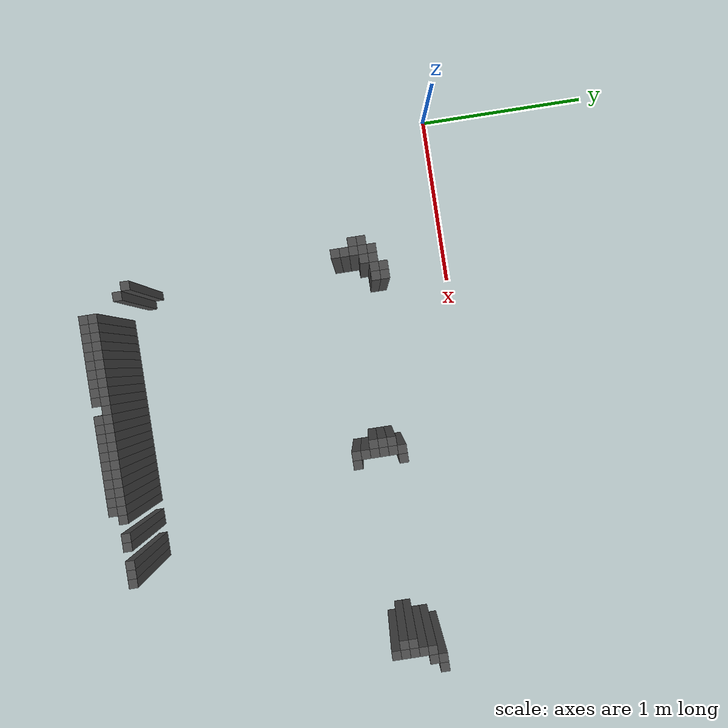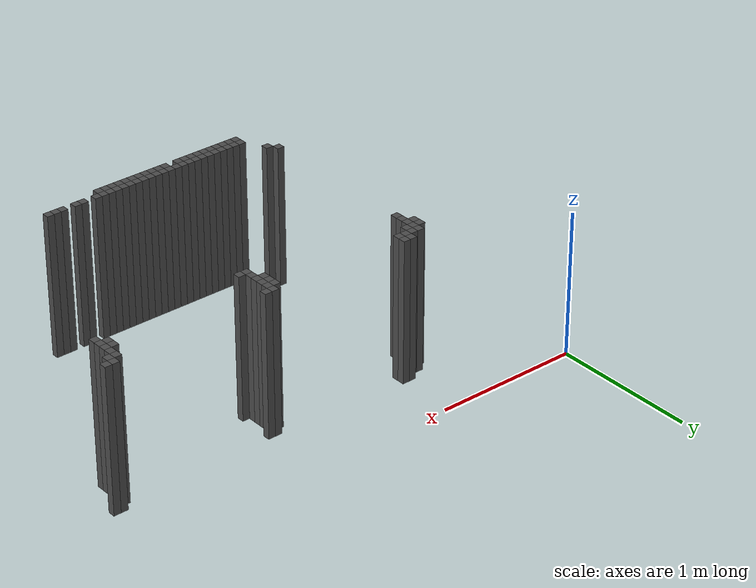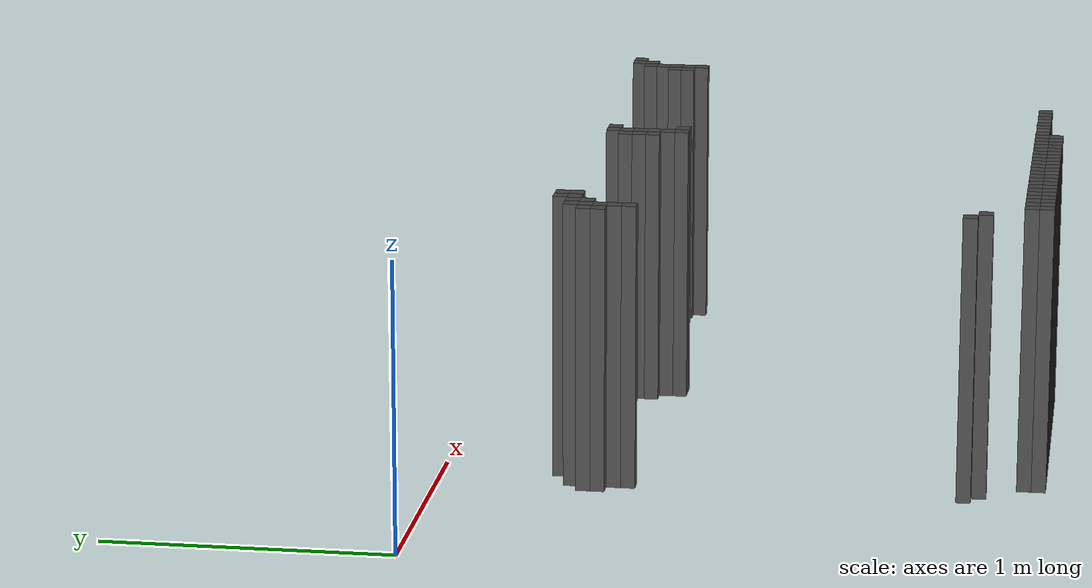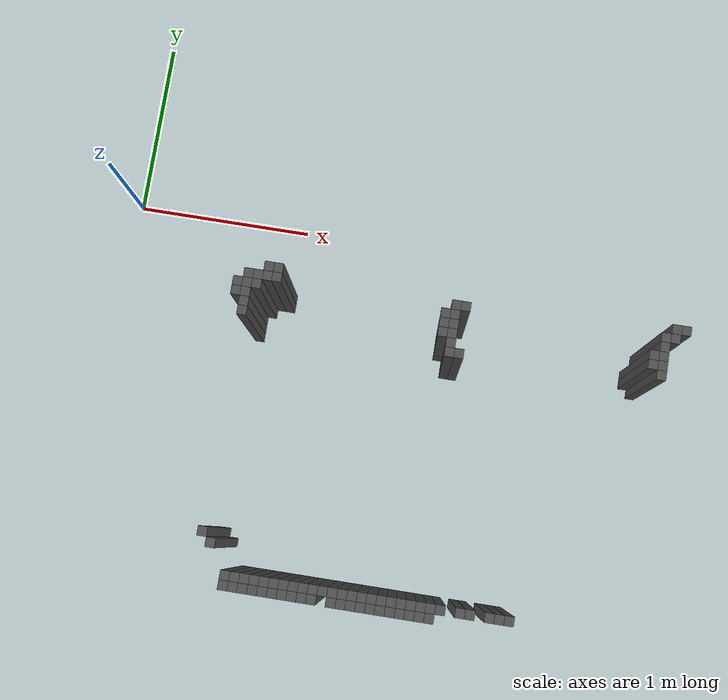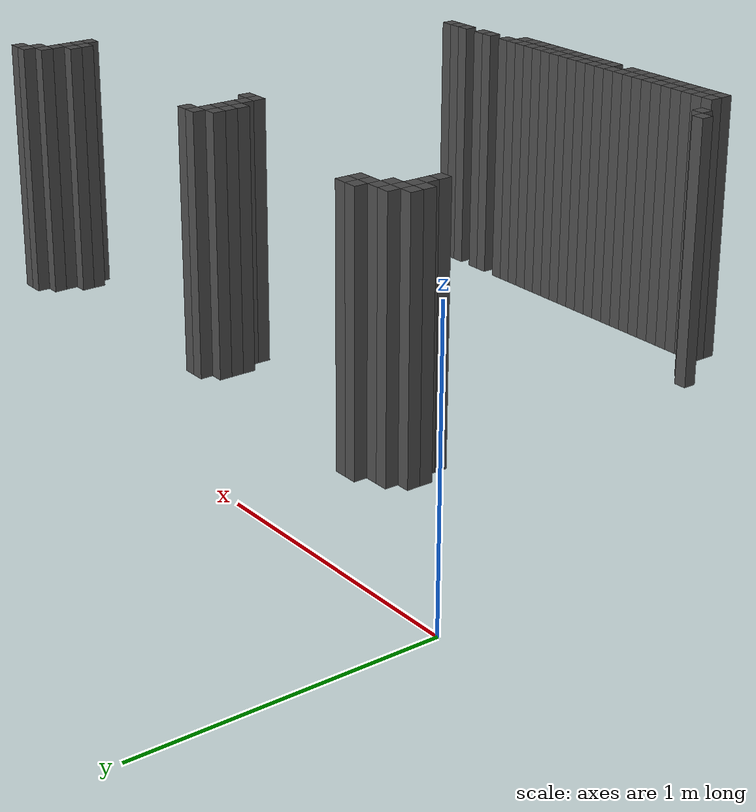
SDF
<sdf version="1.9">
 <world name="house_cleaner">
  <model name="wall_75_42">
   <static>true</static>
   <pose>0.9300 -0.4100 0.5 0 0 0</pose>
   <link name="wall_link">
    <collision name="collision"><geometry><box><size>0.05 0.05 1.0</size></box></geometry></collision>
    <visual name="visual">
     <geometry><box><size>0.05 0.05 1.0</size></box></geometry>
     <material><ambient>0.3 0.3 0.3 1</ambient><diffuse>0.3 0.3 0.3 1</diffuse></material>
    </visual>
   </link>
  </model>
  <model name="wall_75_43">
   <static>true</static>
   <pose>0.9800 -0.4100 0.5 0 0 0</pose>
   <link name="wall_link">
    <collision name="collision"><geometry><box><size>0.05 0.05 1.0</size></box></geometry></collision>
    <visual name="visual">
     <geometry><box><size>0.05 0.05 1.0</size></box></geometry>
     <material><ambient>0.3 0.3 0.3 1</ambient><diffuse>0.3 0.3 0.3 1</diffuse></material>
    </visual>
   </link>
  </model>
  <model name="wall_75_85">
   <static>true</static>
   <pose>3.0800 -0.4100 0.5 0 0 0</pose>
   <link name="wall_link">
    <collision name="collision"><geometry><box><size>0.05 0.05 1.0</size></box></geometry></collision>
    <visual name="visual">
     <geometry><box><size>0.05 0.05 1.0</size></box></geometry>
     <material><ambient>0.3 0.3 0.3 1</ambient><diffuse>0.3 0.3 0.3 1</diffuse></material>
    </visual>
   </link>
  </model>
  <model name="wall_75_86">
   <static>true</static>
   <pose>3.1300 -0.4100 0.5 0 0 0</pose>
   <link name="wall_link">
    <collision name="collision"><geometry><box><size>0.05 0.05 1.0</size></box></geometry></collision>
    <visual name="visual">
     <geometry><box><size>0.05 0.05 1.0</size></box></geometry>
     <material><ambient>0.3 0.3 0.3 1</ambient><diffuse>0.3 0.3 0.3 1</diffuse></material>
    </visual>
   </link>
  </model>
  <model name="wall_76_40">
   <static>true</static>
   <pose>0.8300 -0.4600 0.5 0 0 0</pose>
   <link name="wall_link">
    <collision name="collision"><geometry><box><size>0.05 0.05 1.0</size></box></geometry></collision>
    <visual name="visual">
     <geometry><box><size>0.05 0.05 1.0</size></box></geometry>
     <material><ambient>0.3 0.3 0.3 1</ambient><diffuse>0.3 0.3 0.3 1</diffuse></material>
    </visual>
   </link>
  </model>
  <model name="wall_76_41">
   <static>true</static>
   <pose>0.8800 -0.4600 0.5 0 0 0</pose>
   <link name="wall_link">
    <collision name="collision"><geometry><box><size>0.05 0.05 1.0</size></box></geometry></collision>
    <visual name="visual">
     <geometry><box><size>0.05 0.05 1.0</size></box></geometry>
     <material><ambient>0.3 0.3 0.3 1</ambient><diffuse>0.3 0.3 0.3 1</diffuse></material>
    </visual>
   </link>
  </model>
  <model name="wall_76_42">
   <static>true</static>
   <pose>0.9300 -0.4600 0.5 0 0 0</pose>
   <link name="wall_link">
    <collision name="collision"><geometry><box><size>0.05 0.05 1.0</size></box></geometry></collision>
    <visual name="visual">
     <geometry><box><size>0.05 0.05 1.0</size></box></geometry>
     <material><ambient>0.3 0.3 0.3 1</ambient><diffuse>0.3 0.3 0.3 1</diffuse></material>
    </visual>
   </link>
  </model>
  <model name="wall_76_43">
   <static>true</static>
   <pose>0.9800 -0.4600 0.5 0 0 0</pose>
   <link name="wall_link">
    <collision name="collision"><geometry><box><size>0.05 0.05 1.0</size></box></geometry></collision>
    <visual name="visual">
     <geometry><box><size>0.05 0.05 1.0</size></box></geometry>
     <material><ambient>0.3 0.3 0.3 1</ambient><diffuse>0.3 0.3 0.3 1</diffuse></material>
    </visual>
   </link>
  </model>
  <model name="wall_76_62">
   <static>true</static>
   <pose>1.9300 -0.4600 0.5 0 0 0</pose>
   <link name="wall_link">
    <collision name="collision"><geometry><box><size>0.05 0.05 1.0</size></box></geometry></collision>
    <visual name="visual">
     <geometry><box><size>0.05 0.05 1.0</size></box></geometry>
     <material><ambient>0.3 0.3 0.3 1</ambient><diffuse>0.3 0.3 0.3 1</diffuse></material>
    </visual>
   </link>
  </model>
  <model name="wall_76_63">
   <static>true</static>
   <pose>1.9800 -0.4600 0.5 0 0 0</pose>
   <link name="wall_link">
    <collision name="collision"><geometry><box><size>0.05 0.05 1.0</size></box></geometry></collision>
    <visual name="visual">
     <geometry><box><size>0.05 0.05 1.0</size></box></geometry>
     <material><ambient>0.3 0.3 0.3 1</ambient><diffuse>0.3 0.3 0.3 1</diffuse></material>
    </visual>
   </link>
  </model>
  <model name="wall_76_84">
   <static>true</static>
   <pose>3.0300 -0.4600 0.5 0 0 0</pose>
   <link name="wall_link">
    <collision name="collision"><geometry><box><size>0.05 0.05 1.0</size></box></geometry></collision>
    <visual name="visual">
     <geometry><box><size>0.05 0.05 1.0</size></box></geometry>
     <material><ambient>0.3 0.3 0.3 1</ambient><diffuse>0.3 0.3 0.3 1</diffuse></material>
    </visual>
   </link>
  </model>
  <model name="wall_76_85">
   <static>true</static>
   <pose>3.0800 -0.4600 0.5 0 0 0</pose>
   <link name="wall_link">
    <collision name="collision"><geometry><box><size>0.05 0.05 1.0</size></box></geometry></collision>
    <visual name="visual">
     <geometry><box><size>0.05 0.05 1.0</size></box></geometry>
     <material><ambient>0.3 0.3 0.3 1</ambient><diffuse>0.3 0.3 0.3 1</diffuse></material>
    </visual>
   </link>
  </model>
  <model name="wall_77_39">
   <static>true</static>
   <pose>0.7800 -0.5100 0.5 0 0 0</pose>
   <link name="wall_link">
    <collision name="collision"><geometry><box><size>0.05 0.05 1.0</size></box></geometry></collision>
    <visual name="visual">
     <geometry><box><size>0.05 0.05 1.0</size></box></geometry>
     <material><ambient>0.3 0.3 0.3 1</ambient><diffuse>0.3 0.3 0.3 1</diffuse></material>
    </visual>
   </link>
  </model>
  <model name="wall_77_40">
   <static>true</static>
   <pose>0.8300 -0.5100 0.5 0 0 0</pose>
   <link name="wall_link">
    <collision name="collision"><geometry><box><size>0.05 0.05 1.0</size></box></geometry></collision>
    <visual name="visual">
     <geometry><box><size>0.05 0.05 1.0</size></box></geometry>
     <material><ambient>0.3 0.3 0.3 1</ambient><diffuse>0.3 0.3 0.3 1</diffuse></material>
    </visual>
   </link>
  </model>
  <model name="wall_77_41">
   <static>true</static>
   <pose>0.8800 -0.5100 0.5 0 0 0</pose>
   <link name="wall_link">
    <collision name="collision"><geometry><box><size>0.05 0.05 1.0</size></box></geometry></collision>
    <visual name="visual">
     <geometry><box><size>0.05 0.05 1.0</size></box></geometry>
     <material><ambient>0.3 0.3 0.3 1</ambient><diffuse>0.3 0.3 0.3 1</diffuse></material>
    </visual>
   </link>
  </model>
  <model name="wall_77_61">
   <static>true</static>
   <pose>1.8800 -0.5100 0.5 0 0 0</pose>
   <link name="wall_link">
    <collision name="collision"><geometry><box><size>0.05 0.05 1.0</size></box></geometry></collision>
    <visual name="visual">
     <geometry><box><size>0.05 0.05 1.0</size></box></geometry>
     <material><ambient>0.3 0.3 0.3 1</ambient><diffuse>0.3 0.3 0.3 1</diffuse></material>
    </visual>
   </link>
  </model>
  <model name="wall_77_62">
   <static>true</static>
   <pose>1.9300 -0.5100 0.5 0 0 0</pose>
   <link name="wall_link">
    <collision name="collision"><geometry><box><size>0.05 0.05 1.0</size></box></geometry></collision>
    <visual name="visual">
     <geometry><box><size>0.05 0.05 1.0</size></box></geometry>
     <material><ambient>0.3 0.3 0.3 1</ambient><diffuse>0.3 0.3 0.3 1</diffuse></material>
    </visual>
   </link>
  </model>
  <model name="wall_77_84">
   <static>true</static>
   <pose>3.0300 -0.5100 0.5 0 0 0</pose>
   <link name="wall_link">
    <collision name="collision"><geometry><box><size>0.05 0.05 1.0</size></box></geometry></collision>
    <visual name="visual">
     <geometry><box><size>0.05 0.05 1.0</size></box></geometry>
     <material><ambient>0.3 0.3 0.3 1</ambient><diffuse>0.3 0.3 0.3 1</diffuse></material>
    </visual>
   </link>
  </model>
  <model name="wall_78_39">
   <static>true</static>
   <pose>0.7800 -0.5600 0.5 0 0 0</pose>
   <link name="wall_link">
    <collision name="collision"><geometry><box><size>0.05 0.05 1.0</size></box></geometry></collision>
    <visual name="visual">
     <geometry><box><size>0.05 0.05 1.0</size></box></geometry>
     <material><ambient>0.3 0.3 0.3 1</ambient><diffuse>0.3 0.3 0.3 1</diffuse></material>
    </visual>
   </link>
  </model>
  <model name="wall_78_40">
   <static>true</static>
   <pose>0.8300 -0.5600 0.5 0 0 0</pose>
   <link name="wall_link">
    <collision name="collision"><geometry><box><size>0.05 0.05 1.0</size></box></geometry></collision>
    <visual name="visual">
     <geometry><box><size>0.05 0.05 1.0</size></box></geometry>
     <material><ambient>0.3 0.3 0.3 1</ambient><diffuse>0.3 0.3 0.3 1</diffuse></material>
    </visual>
   </link>
  </model>
  <model name="wall_78_61">
   <static>true</static>
   <pose>1.8800 -0.5600 0.5 0 0 0</pose>
   <link name="wall_link">
    <collision name="collision"><geometry><box><size>0.05 0.05 1.0</size></box></geometry></collision>
    <visual name="visual">
     <geometry><box><size>0.05 0.05 1.0</size></box></geometry>
     <material><ambient>0.3 0.3 0.3 1</ambient><diffuse>0.3 0.3 0.3 1</diffuse></material>
    </visual>
   </link>
  </model>
  <model name="wall_78_62">
   <static>true</static>
   <pose>1.9300 -0.5600 0.5 0 0 0</pose>
   <link name="wall_link">
    <collision name="collision"><geometry><box><size>0.05 0.05 1.0</size></box></geometry></collision>
    <visual name="visual">
     <geometry><box><size>0.05 0.05 1.0</size></box></geometry>
     <material><ambient>0.3 0.3 0.3 1</ambient><diffuse>0.3 0.3 0.3 1</diffuse></material>
    </visual>
   </link>
  </model>
  <model name="wall_78_83">
   <static>true</static>
   <pose>2.9800 -0.5600 0.5 0 0 0</pose>
   <link name="wall_link">
    <collision name="collision"><geometry><box><size>0.05 0.05 1.0</size></box></geometry></collision>
    <visual name="visual">
     <geometry><box><size>0.05 0.05 1.0</size></box></geometry>
     <material><ambient>0.3 0.3 0.3 1</ambient><diffuse>0.3 0.3 0.3 1</diffuse></material>
    </visual>
   </link>
  </model>
  <model name="wall_78_84">
   <static>true</static>
   <pose>3.0300 -0.5600 0.5 0 0 0</pose>
   <link name="wall_link">
    <collision name="collision"><geometry><box><size>0.05 0.05 1.0</size></box></geometry></collision>
    <visual name="visual">
     <geometry><box><size>0.05 0.05 1.0</size></box></geometry>
     <material><ambient>0.3 0.3 0.3 1</ambient><diffuse>0.3 0.3 0.3 1</diffuse></material>
    </visual>
   </link>
  </model>
  <model name="wall_79_40">
   <static>true</static>
   <pose>0.8300 -0.6100 0.5 0 0 0</pose>
   <link name="wall_link">
    <collision name="collision"><geometry><box><size>0.05 0.05 1.0</size></box></geometry></collision>
    <visual name="visual">
     <geometry><box><size>0.05 0.05 1.0</size></box></geometry>
     <material><ambient>0.3 0.3 0.3 1</ambient><diffuse>0.3 0.3 0.3 1</diffuse></material>
    </visual>
   </link>
  </model>
  <model name="wall_79_61">
   <static>true</static>
   <pose>1.8800 -0.6100 0.5 0 0 0</pose>
   <link name="wall_link">
    <collision name="collision"><geometry><box><size>0.05 0.05 1.0</size></box></geometry></collision>
    <visual name="visual">
     <geometry><box><size>0.05 0.05 1.0</size></box></geometry>
     <material><ambient>0.3 0.3 0.3 1</ambient><diffuse>0.3 0.3 0.3 1</diffuse></material>
    </visual>
   </link>
  </model>
  <model name="wall_79_62">
   <static>true</static>
   <pose>1.9300 -0.6100 0.5 0 0 0</pose>
   <link name="wall_link">
    <collision name="collision"><geometry><box><size>0.05 0.05 1.0</size></box></geometry></collision>
    <visual name="visual">
     <geometry><box><size>0.05 0.05 1.0</size></box></geometry>
     <material><ambient>0.3 0.3 0.3 1</ambient><diffuse>0.3 0.3 0.3 1</diffuse></material>
    </visual>
   </link>
  </model>
  <model name="wall_79_83">
   <static>true</static>
   <pose>2.9800 -0.6100 0.5 0 0 0</pose>
   <link name="wall_link">
    <collision name="collision"><geometry><box><size>0.05 0.05 1.0</size></box></geometry></collision>
    <visual name="visual">
     <geometry><box><size>0.05 0.05 1.0</size></box></geometry>
     <material><ambient>0.3 0.3 0.3 1</ambient><diffuse>0.3 0.3 0.3 1</diffuse></material>
    </visual>
   </link>
  </model>
  <model name="wall_79_84">
   <static>true</static>
   <pose>3.0300 -0.6100 0.5 0 0 0</pose>
   <link name="wall_link">
    <collision name="collision"><geometry><box><size>0.05 0.05 1.0</size></box></geometry></collision>
    <visual name="visual">
     <geometry><box><size>0.05 0.05 1.0</size></box></geometry>
     <material><ambient>0.3 0.3 0.3 1</ambient><diffuse>0.3 0.3 0.3 1</diffuse></material>
    </visual>
   </link>
  </model>
  <model name="wall_80_40">
   <static>true</static>
   <pose>0.8300 -0.6600 0.5 0 0 0</pose>
   <link name="wall_link">
    <collision name="collision"><geometry><box><size>0.05 0.05 1.0</size></box></geometry></collision>
    <visual name="visual">
     <geometry><box><size>0.05 0.05 1.0</size></box></geometry>
     <material><ambient>0.3 0.3 0.3 1</ambient><diffuse>0.3 0.3 0.3 1</diffuse></material>
    </visual>
   </link>
  </model>
  <model name="wall_80_62">
   <static>true</static>
   <pose>1.9300 -0.6600 0.5 0 0 0</pose>
   <link name="wall_link">
    <collision name="collision"><geometry><box><size>0.05 0.05 1.0</size></box></geometry></collision>
    <visual name="visual">
     <geometry><box><size>0.05 0.05 1.0</size></box></geometry>
     <material><ambient>0.3 0.3 0.3 1</ambient><diffuse>0.3 0.3 0.3 1</diffuse></material>
    </visual>
   </link>
  </model>
  <model name="wall_80_84">
   <static>true</static>
   <pose>3.0300 -0.6600 0.5 0 0 0</pose>
   <link name="wall_link">
    <collision name="collision"><geometry><box><size>0.05 0.05 1.0</size></box></geometry></collision>
    <visual name="visual">
     <geometry><box><size>0.05 0.05 1.0</size></box></geometry>
     <material><ambient>0.3 0.3 0.3 1</ambient><diffuse>0.3 0.3 0.3 1</diffuse></material>
    </visual>
   </link>
  </model>
  <model name="wall_81_62">
   <static>true</static>
   <pose>1.9300 -0.7100 0.5 0 0 0</pose>
   <link name="wall_link">
    <collision name="collision"><geometry><box><size>0.05 0.05 1.0</size></box></geometry></collision>
    <visual name="visual">
     <geometry><box><size>0.05 0.05 1.0</size></box></geometry>
     <material><ambient>0.3 0.3 0.3 1</ambient><diffuse>0.3 0.3 0.3 1</diffuse></material>
    </visual>
   </link>
  </model>
  <model name="wall_81_63">
   <static>true</static>
   <pose>1.9800 -0.7100 0.5 0 0 0</pose>
   <link name="wall_link">
    <collision name="collision"><geometry><box><size>0.05 0.05 1.0</size></box></geometry></collision>
    <visual name="visual">
     <geometry><box><size>0.05 0.05 1.0</size></box></geometry>
     <material><ambient>0.3 0.3 0.3 1</ambient><diffuse>0.3 0.3 0.3 1</diffuse></material>
    </visual>
   </link>
  </model>
  <model name="wall_103_40">
   <static>true</static>
   <pose>0.8300 -1.8100 0.5 0 0 0</pose>
   <link name="wall_link">
    <collision name="collision"><geometry><box><size>0.05 0.05 1.0</size></box></geometry></collision>
    <visual name="visual">
     <geometry><box><size>0.05 0.05 1.0</size></box></geometry>
     <material><ambient>0.3 0.3 0.3 1</ambient><diffuse>0.3 0.3 0.3 1</diffuse></material>
    </visual>
   </link>
  </model>
  <model name="wall_104_41">
   <static>true</static>
   <pose>0.8800 -1.8600 0.5 0 0 0</pose>
   <link name="wall_link">
    <collision name="collision"><geometry><box><size>0.05 0.05 1.0</size></box></geometry></collision>
    <visual name="visual">
     <geometry><box><size>0.05 0.05 1.0</size></box></geometry>
     <material><ambient>0.3 0.3 0.3 1</ambient><diffuse>0.3 0.3 0.3 1</diffuse></material>
    </visual>
   </link>
  </model>
  <model name="wall_107_43">
   <static>true</static>
   <pose>0.9800 -2.0100 0.5 0 0 0</pose>
   <link name="wall_link">
    <collision name="collision"><geometry><box><size>0.05 0.05 1.0</size></box></geometry></collision>
    <visual name="visual">
     <geometry><box><size>0.05 0.05 1.0</size></box></geometry>
     <material><ambient>0.3 0.3 0.3 1</ambient><diffuse>0.3 0.3 0.3 1</diffuse></material>
    </visual>
   </link>
  </model>
  <model name="wall_107_44">
   <static>true</static>
   <pose>1.0300 -2.0100 0.5 0 0 0</pose>
   <link name="wall_link">
    <collision name="collision"><geometry><box><size>0.05 0.05 1.0</size></box></geometry></collision>
    <visual name="visual">
     <geometry><box><size>0.05 0.05 1.0</size></box></geometry>
     <material><ambient>0.3 0.3 0.3 1</ambient><diffuse>0.3 0.3 0.3 1</diffuse></material>
    </visual>
   </link>
  </model>
  <model name="wall_107_45">
   <static>true</static>
   <pose>1.0800 -2.0100 0.5 0 0 0</pose>
   <link name="wall_link">
    <collision name="collision"><geometry><box><size>0.05 0.05 1.0</size></box></geometry></collision>
    <visual name="visual">
     <geometry><box><size>0.05 0.05 1.0</size></box></geometry>
     <material><ambient>0.3 0.3 0.3 1</ambient><diffuse>0.3 0.3 0.3 1</diffuse></material>
    </visual>
   </link>
  </model>
  <model name="wall_107_46">
   <static>true</static>
   <pose>1.1300 -2.0100 0.5 0 0 0</pose>
   <link name="wall_link">
    <collision name="collision"><geometry><box><size>0.05 0.05 1.0</size></box></geometry></collision>
    <visual name="visual">
     <geometry><box><size>0.05 0.05 1.0</size></box></geometry>
     <material><ambient>0.3 0.3 0.3 1</ambient><diffuse>0.3 0.3 0.3 1</diffuse></material>
    </visual>
   </link>
  </model>
  <model name="wall_107_47">
   <static>true</static>
   <pose>1.1800 -2.0100 0.5 0 0 0</pose>
   <link name="wall_link">
    <collision name="collision"><geometry><box><size>0.05 0.05 1.0</size></box></geometry></collision>
    <visual name="visual">
     <geometry><box><size>0.05 0.05 1.0</size></box></geometry>
     <material><ambient>0.3 0.3 0.3 1</ambient><diffuse>0.3 0.3 0.3 1</diffuse></material>
    </visual>
   </link>
  </model>
  <model name="wall_107_48">
   <static>true</static>
   <pose>1.2300 -2.0100 0.5 0 0 0</pose>
   <link name="wall_link">
    <collision name="collision"><geometry><box><size>0.05 0.05 1.0</size></box></geometry></collision>
    <visual name="visual">
     <geometry><box><size>0.05 0.05 1.0</size></box></geometry>
     <material><ambient>0.3 0.3 0.3 1</ambient><diffuse>0.3 0.3 0.3 1</diffuse></material>
    </visual>
   </link>
  </model>
  <model name="wall_107_49">
   <static>true</static>
   <pose>1.2800 -2.0100 0.5 0 0 0</pose>
   <link name="wall_link">
    <collision name="collision"><geometry><box><size>0.05 0.05 1.0</size></box></geometry></collision>
    <visual name="visual">
     <geometry><box><size>0.05 0.05 1.0</size></box></geometry>
     <material><ambient>0.3 0.3 0.3 1</ambient><diffuse>0.3 0.3 0.3 1</diffuse></material>
    </visual>
   </link>
  </model>
  <model name="wall_107_50">
   <static>true</static>
   <pose>1.3300 -2.0100 0.5 0 0 0</pose>
   <link name="wall_link">
    <collision name="collision"><geometry><box><size>0.05 0.05 1.0</size></box></geometry></collision>
    <visual name="visual">
     <geometry><box><size>0.05 0.05 1.0</size></box></geometry>
     <material><ambient>0.3 0.3 0.3 1</ambient><diffuse>0.3 0.3 0.3 1</diffuse></material>
    </visual>
   </link>
  </model>
  <model name="wall_107_51">
   <static>true</static>
   <pose>1.3800 -2.0100 0.5 0 0 0</pose>
   <link name="wall_link">
    <collision name="collision"><geometry><box><size>0.05 0.05 1.0</size></box></geometry></collision>
    <visual name="visual">
     <geometry><box><size>0.05 0.05 1.0</size></box></geometry>
     <material><ambient>0.3 0.3 0.3 1</ambient><diffuse>0.3 0.3 0.3 1</diffuse></material>
    </visual>
   </link>
  </model>
  <model name="wall_107_52">
   <static>true</static>
   <pose>1.4300 -2.0100 0.5 0 0 0</pose>
   <link name="wall_link">
    <collision name="collision"><geometry><box><size>0.05 0.05 1.0</size></box></geometry></collision>
    <visual name="visual">
     <geometry><box><size>0.05 0.05 1.0</size></box></geometry>
     <material><ambient>0.3 0.3 0.3 1</ambient><diffuse>0.3 0.3 0.3 1</diffuse></material>
    </visual>
   </link>
  </model>
  <model name="wall_107_53">
   <static>true</static>
   <pose>1.4800 -2.0100 0.5 0 0 0</pose>
   <link name="wall_link">
    <collision name="collision"><geometry><box><size>0.05 0.05 1.0</size></box></geometry></collision>
    <visual name="visual">
     <geometry><box><size>0.05 0.05 1.0</size></box></geometry>
     <material><ambient>0.3 0.3 0.3 1</ambient><diffuse>0.3 0.3 0.3 1</diffuse></material>
    </visual>
   </link>
  </model>
  <model name="wall_107_54">
   <static>true</static>
   <pose>1.5300 -2.0100 0.5 0 0 0</pose>
   <link name="wall_link">
    <collision name="collision"><geometry><box><size>0.05 0.05 1.0</size></box></geometry></collision>
    <visual name="visual">
     <geometry><box><size>0.05 0.05 1.0</size></box></geometry>
     <material><ambient>0.3 0.3 0.3 1</ambient><diffuse>0.3 0.3 0.3 1</diffuse></material>
    </visual>
   </link>
  </model>
  <model name="wall_107_55">
   <static>true</static>
   <pose>1.5800 -2.0100 0.5 0 0 0</pose>
   <link name="wall_link">
    <collision name="collision"><geometry><box><size>0.05 0.05 1.0</size></box></geometry></collision>
    <visual name="visual">
     <geometry><box><size>0.05 0.05 1.0</size></box></geometry>
     <material><ambient>0.3 0.3 0.3 1</ambient><diffuse>0.3 0.3 0.3 1</diffuse></material>
    </visual>
   </link>
  </model>
  <model name="wall_107_56">
   <static>true</static>
   <pose>1.6300 -2.0100 0.5 0 0 0</pose>
   <link name="wall_link">
    <collision name="collision"><geometry><box><size>0.05 0.05 1.0</size></box></geometry></collision>
    <visual name="visual">
     <geometry><box><size>0.05 0.05 1.0</size></box></geometry>
     <material><ambient>0.3 0.3 0.3 1</ambient><diffuse>0.3 0.3 0.3 1</diffuse></material>
    </visual>
   </link>
  </model>
  <model name="wall_107_57">
   <static>true</static>
   <pose>1.6800 -2.0100 0.5 0 0 0</pose>
   <link name="wall_link">
    <collision name="collision"><geometry><box><size>0.05 0.05 1.0</size></box></geometry></collision>
    <visual name="visual">
     <geometry><box><size>0.05 0.05 1.0</size></box></geometry>
     <material><ambient>0.3 0.3 0.3 1</ambient><diffuse>0.3 0.3 0.3 1</diffuse></material>
    </visual>
   </link>
  </model>
  <model name="wall_107_58">
   <static>true</static>
   <pose>1.7300 -2.0100 0.5 0 0 0</pose>
   <link name="wall_link">
    <collision name="collision"><geometry><box><size>0.05 0.05 1.0</size></box></geometry></collision>
    <visual name="visual">
     <geometry><box><size>0.05 0.05 1.0</size></box></geometry>
     <material><ambient>0.3 0.3 0.3 1</ambient><diffuse>0.3 0.3 0.3 1</diffuse></material>
    </visual>
   </link>
  </model>
  <model name="wall_107_59">
   <static>true</static>
   <pose>1.7800 -2.0100 0.5 0 0 0</pose>
   <link name="wall_link">
    <collision name="collision"><geometry><box><size>0.05 0.05 1.0</size></box></geometry></collision>
    <visual name="visual">
     <geometry><box><size>0.05 0.05 1.0</size></box></geometry>
     <material><ambient>0.3 0.3 0.3 1</ambient><diffuse>0.3 0.3 0.3 1</diffuse></material>
    </visual>
   </link>
  </model>
  <model name="wall_107_60">
   <static>true</static>
   <pose>1.8300 -2.0100 0.5 0 0 0</pose>
   <link name="wall_link">
    <collision name="collision"><geometry><box><size>0.05 0.05 1.0</size></box></geometry></collision>
    <visual name="visual">
     <geometry><box><size>0.05 0.05 1.0</size></box></geometry>
     <material><ambient>0.3 0.3 0.3 1</ambient><diffuse>0.3 0.3 0.3 1</diffuse></material>
    </visual>
   </link>
  </model>
  <model name="wall_107_61">
   <static>true</static>
   <pose>1.8800 -2.0100 0.5 0 0 0</pose>
   <link name="wall_link">
    <collision name="collision"><geometry><box><size>0.05 0.05 1.0</size></box></geometry></collision>
    <visual name="visual">
     <geometry><box><size>0.05 0.05 1.0</size></box></geometry>
     <material><ambient>0.3 0.3 0.3 1</ambient><diffuse>0.3 0.3 0.3 1</diffuse></material>
    </visual>
   </link>
  </model>
  <model name="wall_107_62">
   <static>true</static>
   <pose>1.9300 -2.0100 0.5 0 0 0</pose>
   <link name="wall_link">
    <collision name="collision"><geometry><box><size>0.05 0.05 1.0</size></box></geometry></collision>
    <visual name="visual">
     <geometry><box><size>0.05 0.05 1.0</size></box></geometry>
     <material><ambient>0.3 0.3 0.3 1</ambient><diffuse>0.3 0.3 0.3 1</diffuse></material>
    </visual>
   </link>
  </model>
  <model name="wall_107_63">
   <static>true</static>
   <pose>1.9800 -2.0100 0.5 0 0 0</pose>
   <link name="wall_link">
    <collision name="collision"><geometry><box><size>0.05 0.05 1.0</size></box></geometry></collision>
    <visual name="visual">
     <geometry><box><size>0.05 0.05 1.0</size></box></geometry>
     <material><ambient>0.3 0.3 0.3 1</ambient><diffuse>0.3 0.3 0.3 1</diffuse></material>
    </visual>
   </link>
  </model>
  <model name="wall_107_64">
   <static>true</static>
   <pose>2.0300 -2.0100 0.5 0 0 0</pose>
   <link name="wall_link">
    <collision name="collision"><geometry><box><size>0.05 0.05 1.0</size></box></geometry></collision>
    <visual name="visual">
     <geometry><box><size>0.05 0.05 1.0</size></box></geometry>
     <material><ambient>0.3 0.3 0.3 1</ambient><diffuse>0.3 0.3 0.3 1</diffuse></material>
    </visual>
   </link>
  </model>
  <model name="wall_107_65">
   <static>true</static>
   <pose>2.0800 -2.0100 0.5 0 0 0</pose>
   <link name="wall_link">
    <collision name="collision"><geometry><box><size>0.05 0.05 1.0</size></box></geometry></collision>
    <visual name="visual">
     <geometry><box><size>0.05 0.05 1.0</size></box></geometry>
     <material><ambient>0.3 0.3 0.3 1</ambient><diffuse>0.3 0.3 0.3 1</diffuse></material>
    </visual>
   </link>
  </model>
  <model name="wall_107_67">
   <static>true</static>
   <pose>2.1800 -2.0100 0.5 0 0 0</pose>
   <link name="wall_link">
    <collision name="collision"><geometry><box><size>0.05 0.05 1.0</size></box></geometry></collision>
    <visual name="visual">
     <geometry><box><size>0.05 0.05 1.0</size></box></geometry>
     <material><ambient>0.3 0.3 0.3 1</ambient><diffuse>0.3 0.3 0.3 1</diffuse></material>
    </visual>
   </link>
  </model>
  <model name="wall_107_68">
   <static>true</static>
   <pose>2.2300 -2.0100 0.5 0 0 0</pose>
   <link name="wall_link">
    <collision name="collision"><geometry><box><size>0.05 0.05 1.0</size></box></geometry></collision>
    <visual name="visual">
     <geometry><box><size>0.05 0.05 1.0</size></box></geometry>
     <material><ambient>0.3 0.3 0.3 1</ambient><diffuse>0.3 0.3 0.3 1</diffuse></material>
    </visual>
   </link>
  </model>
  <model name="wall_107_70">
   <static>true</static>
   <pose>2.3300 -2.0100 0.5 0 0 0</pose>
   <link name="wall_link">
    <collision name="collision"><geometry><box><size>0.05 0.05 1.0</size></box></geometry></collision>
    <visual name="visual">
     <geometry><box><size>0.05 0.05 1.0</size></box></geometry>
     <material><ambient>0.3 0.3 0.3 1</ambient><diffuse>0.3 0.3 0.3 1</diffuse></material>
    </visual>
   </link>
  </model>
  <model name="wall_107_71">
   <static>true</static>
   <pose>2.3800 -2.0100 0.5 0 0 0</pose>
   <link name="wall_link">
    <collision name="collision"><geometry><box><size>0.05 0.05 1.0</size></box></geometry></collision>
    <visual name="visual">
     <geometry><box><size>0.05 0.05 1.0</size></box></geometry>
     <material><ambient>0.3 0.3 0.3 1</ambient><diffuse>0.3 0.3 0.3 1</diffuse></material>
    </visual>
   </link>
  </model>
  <model name="wall_107_72">
   <static>true</static>
   <pose>2.4300 -2.0100 0.5 0 0 0</pose>
   <link name="wall_link">
    <collision name="collision"><geometry><box><size>0.05 0.05 1.0</size></box></geometry></collision>
    <visual name="visual">
     <geometry><box><size>0.05 0.05 1.0</size></box></geometry>
     <material><ambient>0.3 0.3 0.3 1</ambient><diffuse>0.3 0.3 0.3 1</diffuse></material>
    </visual>
   </link>
  </model>
  <model name="wall_108_43">
   <static>true</static>
   <pose>0.9800 -2.0600 0.5 0 0 0</pose>
   <link name="wall_link">
    <collision name="collision"><geometry><box><size>0.05 0.05 1.0</size></box></geometry></collision>
    <visual name="visual">
     <geometry><box><size>0.05 0.05 1.0</size></box></geometry>
     <material><ambient>0.3 0.3 0.3 1</ambient><diffuse>0.3 0.3 0.3 1</diffuse></material>
    </visual>
   </link>
  </model>
  <model name="wall_108_44">
   <static>true</static>
   <pose>1.0300 -2.0600 0.5 0 0 0</pose>
   <link name="wall_link">
    <collision name="collision"><geometry><box><size>0.05 0.05 1.0</size></box></geometry></collision>
    <visual name="visual">
     <geometry><box><size>0.05 0.05 1.0</size></box></geometry>
     <material><ambient>0.3 0.3 0.3 1</ambient><diffuse>0.3 0.3 0.3 1</diffuse></material>
    </visual>
   </link>
  </model>
  <model name="wall_108_45">
   <static>true</static>
   <pose>1.0800 -2.0600 0.5 0 0 0</pose>
   <link name="wall_link">
    <collision name="collision"><geometry><box><size>0.05 0.05 1.0</size></box></geometry></collision>
    <visual name="visual">
     <geometry><box><size>0.05 0.05 1.0</size></box></geometry>
     <material><ambient>0.3 0.3 0.3 1</ambient><diffuse>0.3 0.3 0.3 1</diffuse></material>
    </visual>
   </link>
  </model>
  <model name="wall_108_46">
   <static>true</static>
   <pose>1.1300 -2.0600 0.5 0 0 0</pose>
   <link name="wall_link">
    <collision name="collision"><geometry><box><size>0.05 0.05 1.0</size></box></geometry></collision>
    <visual name="visual">
     <geometry><box><size>0.05 0.05 1.0</size></box></geometry>
     <material><ambient>0.3 0.3 0.3 1</ambient><diffuse>0.3 0.3 0.3 1</diffuse></material>
    </visual>
   </link>
  </model>
  <model name="wall_108_47">
   <static>true</static>
   <pose>1.1800 -2.0600 0.5 0 0 0</pose>
   <link name="wall_link">
    <collision name="collision"><geometry><box><size>0.05 0.05 1.0</size></box></geometry></collision>
    <visual name="visual">
     <geometry><box><size>0.05 0.05 1.0</size></box></geometry>
     <material><ambient>0.3 0.3 0.3 1</ambient><diffuse>0.3 0.3 0.3 1</diffuse></material>
    </visual>
   </link>
  </model>
  <model name="wall_108_48">
   <static>true</static>
   <pose>1.2300 -2.0600 0.5 0 0 0</pose>
   <link name="wall_link">
    <collision name="collision"><geometry><box><size>0.05 0.05 1.0</size></box></geometry></collision>
    <visual name="visual">
     <geometry><box><size>0.05 0.05 1.0</size></box></geometry>
     <material><ambient>0.3 0.3 0.3 1</ambient><diffuse>0.3 0.3 0.3 1</diffuse></material>
    </visual>
   </link>
  </model>
  <model name="wall_108_49">
   <static>true</static>
   <pose>1.2800 -2.0600 0.5 0 0 0</pose>
   <link name="wall_link">
    <collision name="collision"><geometry><box><size>0.05 0.05 1.0</size></box></geometry></collision>
    <visual name="visual">
     <geometry><box><size>0.05 0.05 1.0</size></box></geometry>
     <material><ambient>0.3 0.3 0.3 1</ambient><diffuse>0.3 0.3 0.3 1</diffuse></material>
    </visual>
   </link>
  </model>
  <model name="wall_108_50">
   <static>true</static>
   <pose>1.3300 -2.0600 0.5 0 0 0</pose>
   <link name="wall_link">
    <collision name="collision"><geometry><box><size>0.05 0.05 1.0</size></box></geometry></collision>
    <visual name="visual">
     <geometry><box><size>0.05 0.05 1.0</size></box></geometry>
     <material><ambient>0.3 0.3 0.3 1</ambient><diffuse>0.3 0.3 0.3 1</diffuse></material>
    </visual>
   </link>
  </model>
  <model name="wall_108_51">
   <static>true</static>
   <pose>1.3800 -2.0600 0.5 0 0 0</pose>
   <link name="wall_link">
    <collision name="collision"><geometry><box><size>0.05 0.05 1.0</size></box></geometry></collision>
    <visual name="visual">
     <geometry><box><size>0.05 0.05 1.0</size></box></geometry>
     <material><ambient>0.3 0.3 0.3 1</ambient><diffuse>0.3 0.3 0.3 1</diffuse></material>
    </visual>
   </link>
  </model>
  <model name="wall_108_52">
   <static>true</static>
   <pose>1.4300 -2.0600 0.5 0 0 0</pose>
   <link name="wall_link">
    <collision name="collision"><geometry><box><size>0.05 0.05 1.0</size></box></geometry></collision>
    <visual name="visual">
     <geometry><box><size>0.05 0.05 1.0</size></box></geometry>
     <material><ambient>0.3 0.3 0.3 1</ambient><diffuse>0.3 0.3 0.3 1</diffuse></material>
    </visual>
   </link>
  </model>
  <model name="wall_108_54">
   <static>true</static>
   <pose>1.5300 -2.0600 0.5 0 0 0</pose>
   <link name="wall_link">
    <collision name="collision"><geometry><box><size>0.05 0.05 1.0</size></box></geometry></collision>
    <visual name="visual">
     <geometry><box><size>0.05 0.05 1.0</size></box></geometry>
     <material><ambient>0.3 0.3 0.3 1</ambient><diffuse>0.3 0.3 0.3 1</diffuse></material>
    </visual>
   </link>
  </model>
  <model name="wall_108_55">
   <static>true</static>
   <pose>1.5800 -2.0600 0.5 0 0 0</pose>
   <link name="wall_link">
    <collision name="collision"><geometry><box><size>0.05 0.05 1.0</size></box></geometry></collision>
    <visual name="visual">
     <geometry><box><size>0.05 0.05 1.0</size></box></geometry>
     <material><ambient>0.3 0.3 0.3 1</ambient><diffuse>0.3 0.3 0.3 1</diffuse></material>
    </visual>
   </link>
  </model>
  <model name="wall_108_56">
   <static>true</static>
   <pose>1.6300 -2.0600 0.5 0 0 0</pose>
   <link name="wall_link">
    <collision name="collision"><geometry><box><size>0.05 0.05 1.0</size></box></geometry></collision>
    <visual name="visual">
     <geometry><box><size>0.05 0.05 1.0</size></box></geometry>
     <material><ambient>0.3 0.3 0.3 1</ambient><diffuse>0.3 0.3 0.3 1</diffuse></material>
    </visual>
   </link>
  </model>
  <model name="wall_108_57">
   <static>true</static>
   <pose>1.6800 -2.0600 0.5 0 0 0</pose>
   <link name="wall_link">
    <collision name="collision"><geometry><box><size>0.05 0.05 1.0</size></box></geometry></collision>
    <visual name="visual">
     <geometry><box><size>0.05 0.05 1.0</size></box></geometry>
     <material><ambient>0.3 0.3 0.3 1</ambient><diffuse>0.3 0.3 0.3 1</diffuse></material>
    </visual>
   </link>
  </model>
  <model name="wall_108_58">
   <static>true</static>
   <pose>1.7300 -2.0600 0.5 0 0 0</pose>
   <link name="wall_link">
    <collision name="collision"><geometry><box><size>0.05 0.05 1.0</size></box></geometry></collision>
    <visual name="visual">
     <geometry><box><size>0.05 0.05 1.0</size></box></geometry>
     <material><ambient>0.3 0.3 0.3 1</ambient><diffuse>0.3 0.3 0.3 1</diffuse></material>
    </visual>
   </link>
  </model>
  <model name="wall_108_59">
   <static>true</static>
   <pose>1.7800 -2.0600 0.5 0 0 0</pose>
   <link name="wall_link">
    <collision name="collision"><geometry><box><size>0.05 0.05 1.0</size></box></geometry></collision>
    <visual name="visual">
     <geometry><box><size>0.05 0.05 1.0</size></box></geometry>
     <material><ambient>0.3 0.3 0.3 1</ambient><diffuse>0.3 0.3 0.3 1</diffuse></material>
    </visual>
   </link>
  </model>
  <model name="wall_108_60">
   <static>true</static>
   <pose>1.8300 -2.0600 0.5 0 0 0</pose>
   <link name="wall_link">
    <collision name="collision"><geometry><box><size>0.05 0.05 1.0</size></box></geometry></collision>
    <visual name="visual">
     <geometry><box><size>0.05 0.05 1.0</size></box></geometry>
     <material><ambient>0.3 0.3 0.3 1</ambient><diffuse>0.3 0.3 0.3 1</diffuse></material>
    </visual>
   </link>
  </model>
  <model name="wall_108_61">
   <static>true</static>
   <pose>1.8800 -2.0600 0.5 0 0 0</pose>
   <link name="wall_link">
    <collision name="collision"><geometry><box><size>0.05 0.05 1.0</size></box></geometry></collision>
    <visual name="visual">
     <geometry><box><size>0.05 0.05 1.0</size></box></geometry>
     <material><ambient>0.3 0.3 0.3 1</ambient><diffuse>0.3 0.3 0.3 1</diffuse></material>
    </visual>
   </link>
  </model>
  <model name="wall_108_62">
   <static>true</static>
   <pose>1.9300 -2.0600 0.5 0 0 0</pose>
   <link name="wall_link">
    <collision name="collision"><geometry><box><size>0.05 0.05 1.0</size></box></geometry></collision>
    <visual name="visual">
     <geometry><box><size>0.05 0.05 1.0</size></box></geometry>
     <material><ambient>0.3 0.3 0.3 1</ambient><diffuse>0.3 0.3 0.3 1</diffuse></material>
    </visual>
   </link>
  </model>
  <model name="wall_108_63">
   <static>true</static>
   <pose>1.9800 -2.0600 0.5 0 0 0</pose>
   <link name="wall_link">
    <collision name="collision"><geometry><box><size>0.05 0.05 1.0</size></box></geometry></collision>
    <visual name="visual">
     <geometry><box><size>0.05 0.05 1.0</size></box></geometry>
     <material><ambient>0.3 0.3 0.3 1</ambient><diffuse>0.3 0.3 0.3 1</diffuse></material>
    </visual>
   </link>
  </model>
  <model name="wall_108_64">
   <static>true</static>
   <pose>2.0300 -2.0600 0.5 0 0 0</pose>
   <link name="wall_link">
    <collision name="collision"><geometry><box><size>0.05 0.05 1.0</size></box></geometry></collision>
    <visual name="visual">
     <geometry><box><size>0.05 0.05 1.0</size></box></geometry>
     <material><ambient>0.3 0.3 0.3 1</ambient><diffuse>0.3 0.3 0.3 1</diffuse></material>
    </visual>
   </link>
  </model>
 </world>
</sdf>
